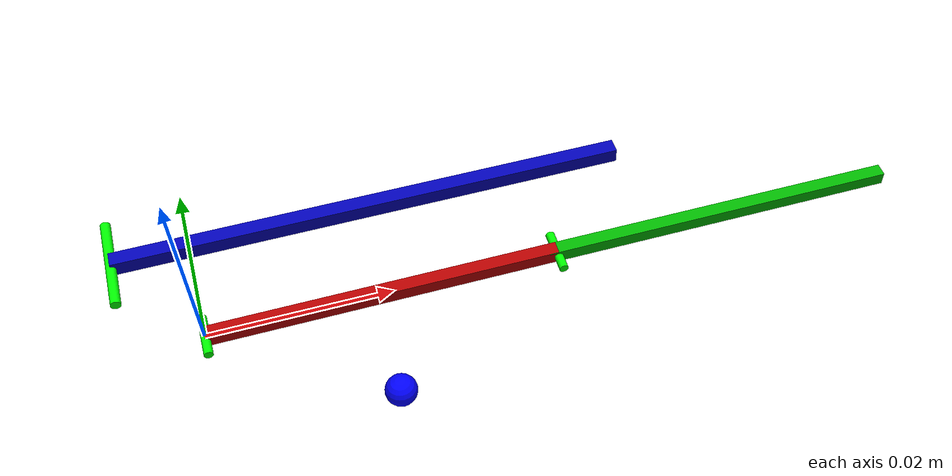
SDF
<?xml version="1.0"?>
<sdf version="1.7">
    <model name="four_bar">
        <link name='driving_link'>
            <inertial>
                <pose>0.01915 0 0 0 0 0</pose>
                <mass>0.00016893</mass>
                <inertia>
                    <ixx>6.334875e-11</ixx>
                    <iyy>2.068181835e-08</iyy>
                    <izz>2.068181835e-08</izz>
                    <ixy>0.0</ixy>
                    <ixz>0.0</ixz>
                    <iyz>0.0</iyz>
                </inertia>
            </inertial>
            <visual name='driving_link_visual'>
                <pose>0.01915 0 0 0 0 0</pose>
                <geometry>
                    <box>
                        <size>0.0383 0.0015 0.0015</size>
                    </box>
                </geometry>
                <material>
                    <diffuse>.7 0 0 1</diffuse>
                </material>
            </visual>
            <visual name="drive_link_pivot_visual">
                <!-- Rotation around Ax by 90° = π/2 radians ≈ 1.57079632679 -->
                <pose>0 0 0 1.57079632679 0 0</pose>
                <geometry>
                    <cylinder>
                        <radius>0.0005</radius>
                        <length>0.005</length>
                    </cylinder>
                </geometry>
                <material>
                    <diffuse>0 1 0 1</diffuse>
                </material>
            </visual>
        </link>

        <link name='humerus'>
            <pose relative_to='driving_link'>0.03830 0 0 0 0 0</pose>
            <inertial>
                <pose>0.019 0 0 0 0 0</pose>
                <mass>0.00016893</mass>
                <inertia>
                    <ixx>6.334875e-11</ixx>
                    <iyy>2.2555674375e-08</iyy>
                    <izz>2.2555674375e-08</izz>
                    <ixy>0.0</ixy>
                    <ixz>0.0</ixz>
                    <iyz>0.0</iyz>
                </inertia>
            </inertial>
            <visual name='humerus_visual'>
                <pose>0.019 0 0 0 0 0</pose>
                <geometry>
                    <box>
                        <size>0.04 0.0015 0.0015 </size>
                    </box>
                </geometry>
                <material>
                    <diffuse>0 .7 0 1</diffuse>
                </material>
            </visual>
            <visual name="humerus_pivot_visual">
                <!-- Rotation around Bx by 90° = π/2 radians ≈ 1.57079632679 -->
                <pose>0 0 0 1.57079632679 0 0</pose>
                <geometry>
                    <cylinder>
                        <radius>0.0005</radius>
                        <length>0.005</length>
                    </cylinder>
                </geometry>
                <material>
                    <diffuse>0 1 0 1</diffuse>
                </material>
            </visual>
            <visual name="CouplerPoint">
                <!-- Translation down Bx by 2 and down Bz by -2 -->
                <pose relative_to="humerus">-.019 0 -.019 0 0 0</pose>
                <geometry>
                    <sphere>
                        <radius>0.002</radius>
                    </sphere>
                </geometry>
                <material>
                    <diffuse>0 0 1 1</diffuse>
                </material>
            </visual>
        </link>

        <link name='radius'>
            <pose>-0.005972 0 0.01403177573 0 0 0</pose>
            <inertial>
                <pose>0.025 0 0 0 0 0</pose>
                <mass>0.00071232</mass>
                <inertia>
                    <ixx>1.5461999999999998e-10</ixx>
                    <iyy>8.597731000000002e-08</iyy>
                    <izz>8.597731000000002e-08</izz>
                    <ixy>0.0</ixy>
                    <ixz>0.0</ixz>
                    <iyz>0.0</iyz>
                </inertia>
            </inertial>
            <visual name='radius_visual'>
                <pose>0.025 0 0 0 0 0</pose>
                <geometry>
                    <box>
                        <size>0.05 0.0015 0.0015</size>
                    </box>
                </geometry>
                <material>
                    <diffuse>0 0 .7 1</diffuse>
                </material>
            </visual>

            <visual name="radius_pivot_visual">
                <!-- Rotation around Cx by 90° = π/2 radians ≈ 1.57079632679 -->
                <pose>0 0 0 1.57079632679 0 0</pose>
                <geometry>
                    <cylinder>
                        <radius>0.0005</radius>
                        <length>0.01</length>
                    </cylinder>
                </geometry>
                <material>
                    <diffuse>0 1 0 1</diffuse>
                </material>
            </visual>
        </link>

        <joint name="driving_joint" type="revolute">
            <parent>world</parent>
            <child>driving_link</child>
            <axis>
                <xyz expressed_in="__model__">0 1 0</xyz>
                <limit>
                </limit>
                <dynamics>
                    <damping>0.0</damping>
                </dynamics>
            </axis>
        </joint>

        <joint name='humerus_joint' type='revolute'>
            <parent>driving_link</parent>
            <child>humerus</child>
            <axis>
                <xyz expressed_in="__model__">0 1 0</xyz>
                <limit>
                    <effort>0</effort>
                </limit>
                <dynamics>
                    <damping>0.0</damping>
                </dynamics>
            </axis>
        </joint>

        <joint name='mid_radial_joint' type='revolute'>
            <parent>world</parent>
            <child>radial_world_anchor</child>
            <axis>
                <xyz expressed_in="__model__">0 1 0</xyz>
                <limit>
                    <effort>0</effort>
                </limit>
                <dynamics>
                    <damping>0</damping>
                </dynamics>
            </axis>
        </joint>
        <frame name="radial_world_anchor" attached_to="radius">
            <pose relative_to="radius">0 0 0 0 0 0</pose>
        </frame>

        <frame name="humerus_radial_bushing" attached_to="humerus">
            <pose relative_to="humerus">0.04 0 0 -1.57079632679 0 0 </pose>
        </frame>
        <frame name="radial_humerus_bushing" attached_to="radius">
            <pose relative_to="radius">0.04 0 0 -1.57079632679 0 0</pose>
        </frame>
    </model>
</sdf>
